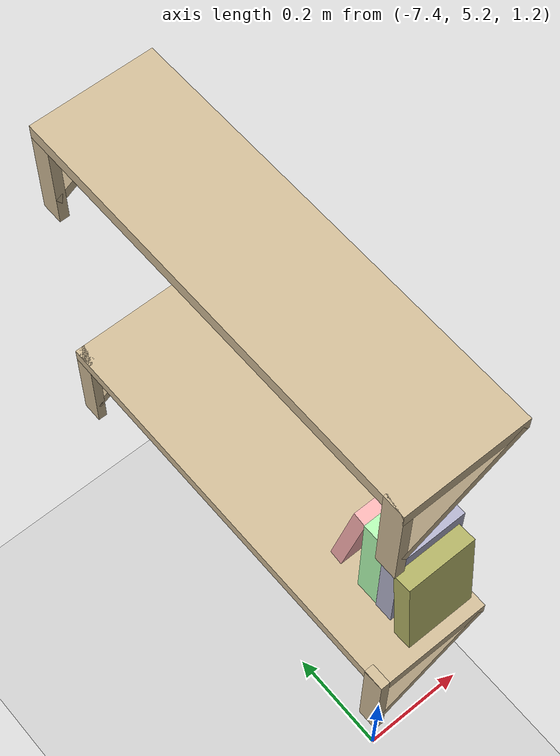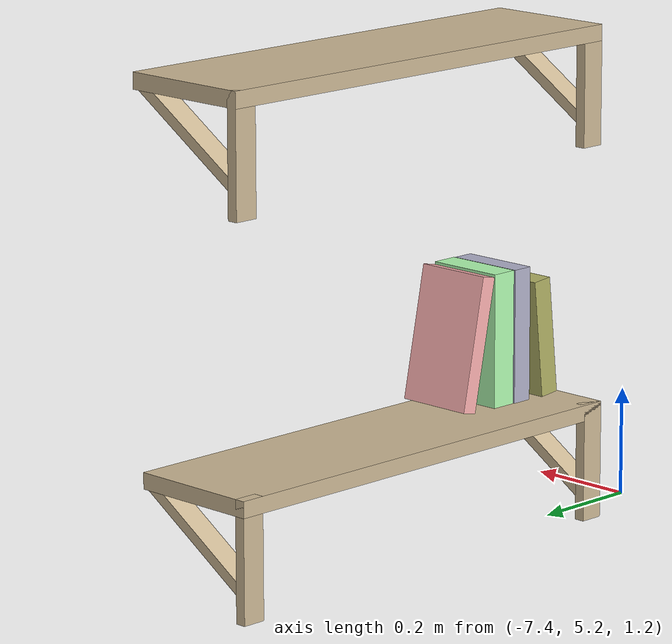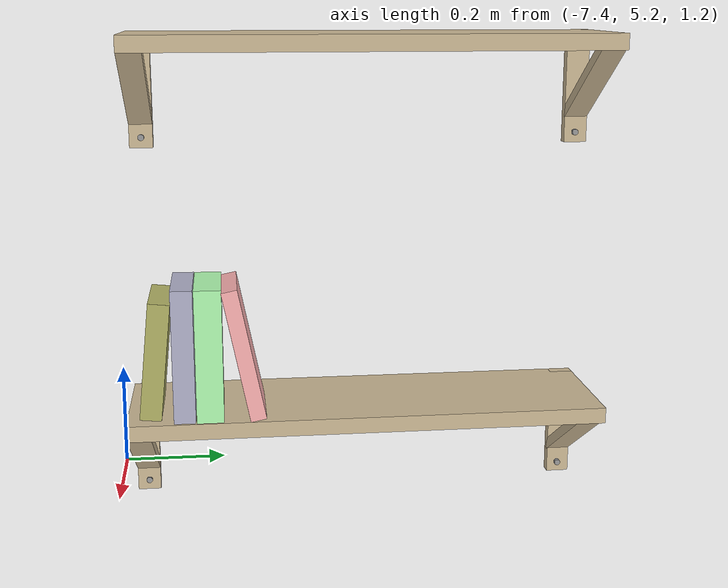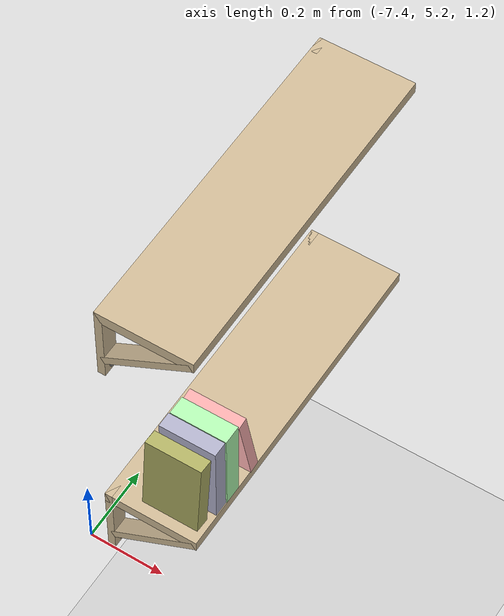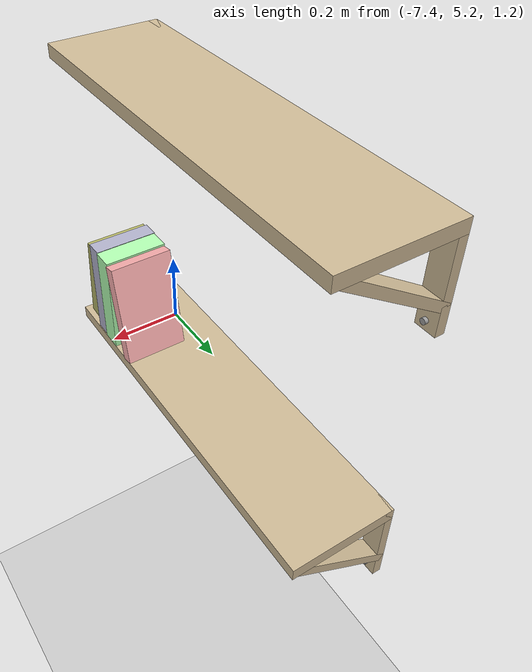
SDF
<sdf version="1.7">
 <world name="default">
  <model name="ground_plane">
   <static>1</static>
   <link name="link">
    <collision name="collision">
     <geometry><plane><normal>0 0 1</normal><size>100 100</size></plane></geometry>
     <surface>
      <contact><collide_bitmask>65535</collide_bitmask></contact>
      <friction><ode><mu>100</mu><mu2>50</mu2></ode></friction>
     </surface>
    </collision>
    <visual name="visual">
     <cast_shadows>0</cast_shadows>
     <geometry><plane><normal>0 0 1</normal><size>100 100</size></plane></geometry>
     <material>
      <script><uri>file://media/materials/scripts/gazebo.material</uri><name>Gazebo/Grey</name></script>
     </material>
    </visual>
   </link>
  </model>
  <model name="my_wall_shelf">
   <link name="link_0">
    <inertial>
     <mass>1</mass>
     <inertia>
      <ixx>0.166667</ixx>
      <ixy>0</ixy>
      <ixz>0</ixz>
      <iyy>0.166667</iyy>
      <iyz>0</iyz>
      <izz>0.166667</izz>
     </inertia>
    </inertial>
    <pose>0.314363 0.257975 0.059537 0 -0 0</pose>
    <visual name="visual">
     <pose>0 0 2 0 -0 0</pose>
     <geometry><box><size>0.25 0.9 0.03</size></box></geometry>
     <material>
      <lighting>1</lighting>
      <script><uri>file://media/materials/scripts/gazebo.material</uri><name>Gazebo/Grey</name></script>
      <shader type="pixel"><normal_map>__default__</normal_map></shader>
      <ambient>0.81 0.73 0.59 1</ambient>
      <diffuse>0.81 0.73 0.59 1</diffuse>
      <specular>0.01 0.01 0.01 1</specular>
      <emissive>0 0 0 1</emissive>
     </material>
    </visual>
    <collision name="collision">
     <pose>0 0 2 0 -0 0</pose>
     <geometry><box><size>0.25 0.9 0.03</size></box></geometry>
     <surface>
      <friction>
       <ode><mu>1</mu><mu2>1</mu2><fdir1>0 0 0</fdir1><slip1>0</slip1><slip2>0</slip2></ode>
       <torsional>
        <coefficient>1</coefficient>
        <patch_radius>0</patch_radius>
        <surface_radius>0</surface_radius>
        <use_patch_radius>1</use_patch_radius>
        <ode><slip>0</slip></ode>
       </torsional>
      </friction>
      <bounce><restitution_coefficient>0</restitution_coefficient><threshold>1e+06</threshold></bounce>
      <contact>
       <collide_without_contact>0</collide_without_contact>
       <collide_without_contact_bitmask>1</collide_without_contact_bitmask>
       <collide_bitmask>1</collide_bitmask>
       <ode>
        <soft_cfm>0</soft_cfm>
        <soft_erp>0.2</soft_erp>
        <kp>1e+13</kp>
        <kd>1</kd>
        <max_vel>0.01</max_vel>
        <min_depth>0</min_depth>
       </ode>
       <bullet>
        <split_impulse>1</split_impulse>
        <split_impulse_penetration_threshold>-0.01</split_impulse_penetration_threshold>
        <soft_cfm>0</soft_cfm>
        <soft_erp>0.2</soft_erp>
        <kp>1e+13</kp>
        <kd>1</kd>
       </bullet>
      </contact>
     </surface>
    </collision>
   </link>
   <link name="link_1">
    <inertial>
     <mass>1</mass>
     <inertia>
      <ixx>0.166667</ixx>
      <ixy>0</ixy>
      <ixz>0</ixz>
      <iyy>0.166667</iyy>
      <iyz>0</iyz>
      <izz>0.166667</izz>
     </inertia>
    </inertial>
    <pose>0.199363 -0.169525 -0.035463 0 -0 0</pose>
    <visual name="visual">
     <pose>0 0 2 0 -0 0</pose>
     <geometry><box><size>0.02 0.045 0.22</size></box></geometry>
     <material>
      <lighting>1</lighting>
      <script><uri>file://media/materials/scripts/gazebo.material</uri><name>Gazebo/Grey</name></script>
      <shader type="pixel"><normal_map>__default__</normal_map></shader>
      <ambient>0.81 0.73 0.59 1</ambient>
      <diffuse>0.81 0.73 0.59 1</diffuse>
      <specular>0.01 0.01 0.01 1</specular>
      <emissive>0 0 0 1</emissive>
     </material>
    </visual>
    <collision name="collision">
     <pose>0 0 2 0 -0 0</pose>
     <geometry><box><size>0.02 0.044 0.22</size></box></geometry>
     <surface>
      <friction>
       <ode><mu>1</mu><mu2>1</mu2><fdir1>0 0 0</fdir1><slip1>0</slip1><slip2>0</slip2></ode>
       <torsional>
        <coefficient>1</coefficient>
        <patch_radius>0</patch_radius>
        <surface_radius>0</surface_radius>
        <use_patch_radius>1</use_patch_radius>
        <ode><slip>0</slip></ode>
       </torsional>
      </friction>
      <bounce><restitution_coefficient>0</restitution_coefficient><threshold>1e+06</threshold></bounce>
      <contact>
       <collide_without_contact>0</collide_without_contact>
       <collide_without_contact_bitmask>1</collide_without_contact_bitmask>
       <collide_bitmask>1</collide_bitmask>
       <ode>
        <soft_cfm>0</soft_cfm>
        <soft_erp>0.2</soft_erp>
        <kp>1e+13</kp>
        <kd>1</kd>
        <max_vel>0.01</max_vel>
        <min_depth>0</min_depth>
       </ode>
       <bullet>
        <split_impulse>1</split_impulse>
        <split_impulse_penetration_threshold>-0.01</split_impulse_penetration_threshold>
        <soft_cfm>0</soft_cfm>
        <soft_erp>0.2</soft_erp>
        <kp>1e+13</kp>
        <kd>1</kd>
       </bullet>
      </contact>
     </surface>
    </collision>
   </link>
   <link name="link_1_clone">
    <inertial>
     <mass>1</mass>
     <inertia>
      <ixx>0.166667</ixx>
      <ixy>0</ixy>
      <ixz>0</ixz>
      <iyy>0.166667</iyy>
      <iyz>0</iyz>
      <izz>0.166667</izz>
     </inertia>
    </inertial>
    <pose>0.199364 0.685475 -0.035463 0 -0 0</pose>
    <visual name="visual">
     <pose>0 0 2 0 -0 0</pose>
     <geometry><box><size>0.02 0.045 0.22</size></box></geometry>
     <material>
      <lighting>1</lighting>
      <script><uri>file://media/materials/scripts/gazebo.material</uri><name>Gazebo/Grey</name></script>
      <shader type="pixel"><normal_map>__default__</normal_map></shader>
      <ambient>0.81 0.73 0.59 1</ambient>
      <diffuse>0.81 0.73 0.59 1</diffuse>
      <specular>0.01 0.01 0.01 1</specular>
      <emissive>0 0 0 1</emissive>
     </material>
    </visual>
    <collision name="collision">
     <pose>0 0 2 0 -0 0</pose>
     <geometry><box><size>0.02 0.044 0.22</size></box></geometry>
     <surface>
      <friction>
       <ode><mu>1</mu><mu2>1</mu2><fdir1>0 0 0</fdir1><slip1>0</slip1><slip2>0</slip2></ode>
       <torsional>
        <coefficient>1</coefficient>
        <patch_radius>0</patch_radius>
        <surface_radius>0</surface_radius>
        <use_patch_radius>1</use_patch_radius>
        <ode><slip>0</slip></ode>
       </torsional>
      </friction>
      <bounce><restitution_coefficient>0</restitution_coefficient><threshold>1e+06</threshold></bounce>
      <contact>
       <collide_without_contact>0</collide_without_contact>
       <collide_without_contact_bitmask>1</collide_without_contact_bitmask>
       <collide_bitmask>1</collide_bitmask>
       <ode>
        <soft_cfm>0</soft_cfm>
        <soft_erp>0.2</soft_erp>
        <kp>1e+13</kp>
        <kd>1</kd>
        <max_vel>0.01</max_vel>
        <min_depth>0</min_depth>
       </ode>
       <bullet>
        <split_impulse>1</split_impulse>
        <split_impulse_penetration_threshold>-0.01</split_impulse_penetration_threshold>
        <soft_cfm>0</soft_cfm>
        <soft_erp>0.2</soft_erp>
        <kp>1e+13</kp>
        <kd>1</kd>
       </bullet>
      </contact>
     </surface>
    </collision>
   </link>
   <link name="link_1_clone_0">
    <inertial>
     <mass>1</mass>
     <inertia>
      <ixx>0.166667</ixx>
      <ixy>0</ixy>
      <ixz>0</ixz>
      <iyy>0.166667</iyy>
      <iyz>0</iyz>
      <izz>0.166667</izz>
     </inertia>
    </inertial>
    <pose>0.317296 -0.16953 -0.018988 0 -0 0</pose>
    <visual name="visual">
     <pose>0 0 2 0 1 0</pose>
     <geometry><box><size>0.02 0.045 0.27</size></box></geometry>
     <material>
      <lighting>1</lighting>
      <script><uri>file://media/materials/scripts/gazebo.material</uri><name>Gazebo/Grey</name></script>
      <shader type="pixel"><normal_map>__default__</normal_map></shader>
      <ambient>0.8 0.73 0.59 1</ambient>
      <diffuse>0.81 0.73 0.59 1</diffuse>
      <specular>0.01 0.01 0.01 1</specular>
      <emissive>0 0 0 1</emissive>
     </material>
    </visual>
    <collision name="collision">
     <pose>0 0 2 0 1 0</pose>
     <geometry><box><size>0.02 0.044 0.27</size></box></geometry>
     <surface>
      <friction>
       <ode><mu>1</mu><mu2>1</mu2><fdir1>0 0 0</fdir1><slip1>0</slip1><slip2>0</slip2></ode>
       <torsional>
        <coefficient>1</coefficient>
        <patch_radius>0</patch_radius>
        <surface_radius>0</surface_radius>
        <use_patch_radius>1</use_patch_radius>
        <ode><slip>0</slip></ode>
       </torsional>
      </friction>
      <bounce><restitution_coefficient>0</restitution_coefficient><threshold>1e+06</threshold></bounce>
      <contact>
       <collide_without_contact>0</collide_without_contact>
       <collide_without_contact_bitmask>1</collide_without_contact_bitmask>
       <collide_bitmask>1</collide_bitmask>
       <ode>
        <soft_cfm>0</soft_cfm>
        <soft_erp>0.2</soft_erp>
        <kp>1e+13</kp>
        <kd>1</kd>
        <max_vel>0.01</max_vel>
        <min_depth>0</min_depth>
       </ode>
       <bullet>
        <split_impulse>1</split_impulse>
        <split_impulse_penetration_threshold>-0.01</split_impulse_penetration_threshold>
        <soft_cfm>0</soft_cfm>
        <soft_erp>0.2</soft_erp>
        <kp>1e+13</kp>
        <kd>1</kd>
       </bullet>
      </contact>
     </surface>
    </collision>
   </link>
   <link name="link_1_clone_0_clone">
    <inertial>
     <mass>1</mass>
     <inertia>
      <ixx>0.166667</ixx>
      <ixy>0</ixy>
      <ixz>0</ixz>
      <iyy>0.166667</iyy>
      <iyz>0</iyz>
      <izz>0.166667</izz>
     </inertia>
    </inertial>
    <pose>0.308365 0.685475 -0.018988 0 -0 0</pose>
    <visual name="visual">
     <pose>0 0 2 0 1 0</pose>
     <geometry><box><size>0.02 0.045 0.27</size></box></geometry>
     <material>
      <lighting>1</lighting>
      <script><uri>file://media/materials/scripts/gazebo.material</uri><name>Gazebo/Grey</name></script>
      <shader type="pixel"><normal_map>__default__</normal_map></shader>
      <ambient>0.81 0.73 0.59 1</ambient>
      <diffuse>0.81 0.73 0.59 1</diffuse>
      <specular>0.01 0.01 0.01 1</specular>
      <emissive>0 0 0 1</emissive>
     </material>
    </visual>
    <collision name="collision">
     <pose>0 0 2 0 1 0</pose>
     <geometry><box><size>0.02 0.044 0.27</size></box></geometry>
     <surface>
      <friction>
       <ode><mu>1</mu><mu2>1</mu2><fdir1>0 0 0</fdir1><slip1>0</slip1><slip2>0</slip2></ode>
       <torsional>
        <coefficient>1</coefficient>
        <patch_radius>0</patch_radius>
        <surface_radius>0</surface_radius>
        <use_patch_radius>1</use_patch_radius>
        <ode><slip>0</slip></ode>
       </torsional>
      </friction>
      <bounce><restitution_coefficient>0</restitution_coefficient><threshold>1e+06</threshold></bounce>
      <contact>
       <collide_without_contact>0</collide_without_contact>
       <collide_without_contact_bitmask>1</collide_without_contact_bitmask>
       <collide_bitmask>1</collide_bitmask>
       <ode>
        <soft_cfm>0</soft_cfm>
        <soft_erp>0.2</soft_erp>
        <kp>1e+13</kp>
        <kd>1</kd>
        <max_vel>0.01</max_vel>
        <min_depth>0</min_depth>
       </ode>
       <bullet>
        <split_impulse>1</split_impulse>
        <split_impulse_penetration_threshold>-0.01</split_impulse_penetration_threshold>
        <soft_cfm>0</soft_cfm>
        <soft_erp>0.2</soft_erp>
        <kp>1e+13</kp>
        <kd>1</kd>
       </bullet>
      </contact>
     </surface>
    </collision>
   </link>
   <link name="link_2">
    <inertial>
     <mass>1</mass>
     <inertia><ixx>0.145833</ixx><ixy>0</ixy><ixz>0</ixz><iyy>0.145833</iyy><iyz>0</iyz><izz>0.125</izz></inertia>
    </inertial>
    <pose>0.206647 0.683855 -0.125468 0 -0 0</pose>
    <visual name="visual">
     <pose>0 0 2 0 1.5707 0</pose>
     <geometry><cylinder><radius>0.006</radius><length>0.02</length></cylinder></geometry>
     <material>
      <lighting>1</lighting>
      <script><uri>file://media/materials/scripts/gazebo.material</uri><name>Gazebo/Grey</name></script>
      <shader type="pixel"><normal_map>__default__</normal_map></shader>
      <ambient>0.86 0.86 0.86 1</ambient>
      <diffuse>0.86 0.86 0.86 1</diffuse>
      <specular>0.01 0.01 0.01 1</specular>
      <emissive>0 0 0 1</emissive>
     </material>
    </visual>
    <collision name="collision">
     <pose>0 0 2 0 1.5707 0</pose>
     <geometry><cylinder><radius>0.006</radius><length>0.02</length></cylinder></geometry>
     <surface>
      <friction>
       <ode><mu>1</mu><mu2>1</mu2><fdir1>0 0 0</fdir1><slip1>0</slip1><slip2>0</slip2></ode>
       <torsional>
        <coefficient>1</coefficient>
        <patch_radius>0</patch_radius>
        <surface_radius>0</surface_radius>
        <use_patch_radius>1</use_patch_radius>
        <ode><slip>0</slip></ode>
       </torsional>
      </friction>
      <bounce><restitution_coefficient>0</restitution_coefficient><threshold>1e+06</threshold></bounce>
      <contact>
       <collide_without_contact>0</collide_without_contact>
       <collide_without_contact_bitmask>1</collide_without_contact_bitmask>
       <collide_bitmask>1</collide_bitmask>
       <ode>
        <soft_cfm>0</soft_cfm>
        <soft_erp>0.2</soft_erp>
        <kp>1e+13</kp>
        <kd>1</kd>
        <max_vel>0.01</max_vel>
        <min_depth>0</min_depth>
       </ode>
       <bullet>
        <split_impulse>1</split_impulse>
        <split_impulse_penetration_threshold>-0.01</split_impulse_penetration_threshold>
        <soft_cfm>0</soft_cfm>
        <soft_erp>0.2</soft_erp>
        <kp>1e+13</kp>
        <kd>1</kd>
       </bullet>
      </contact>
     </surface>
    </collision>
   </link>
   <link name="link_2_clone">
    <inertial>
     <mass>1</mass>
     <inertia><ixx>0.145833</ixx><ixy>0</ixy><ixz>0</ixz><iyy>0.145833</iyy><iyz>0</iyz><izz>0.125</izz></inertia>
    </inertial>
    <pose>0.203478 -0.169266 -0.125468 0 -0 0</pose>
    <visual name="visual">
     <pose>0 0 2 0 1.5707 0</pose>
     <geometry><cylinder><radius>0.006</radius><length>0.02</length></cylinder></geometry>
     <material>
      <lighting>1</lighting>
      <script><uri>file://media/materials/scripts/gazebo.material</uri><name>Gazebo/Grey</name></script>
      <shader type="pixel"><normal_map>__default__</normal_map></shader>
      <ambient>0.86 0.86 0.86 1</ambient>
      <diffuse>0.86 0.86 0.86 1</diffuse>
      <specular>0.01 0.01 0.01 1</specular>
      <emissive>0 0 0 1</emissive>
     </material>
    </visual>
    <collision name="collision">
     <pose>0 0 2 0 1.5707 0</pose>
     <geometry><cylinder><radius>0.006</radius><length>0.02</length></cylinder></geometry>
     <surface>
      <friction>
       <ode><mu>1</mu><mu2>1</mu2><fdir1>0 0 0</fdir1><slip1>0</slip1><slip2>0</slip2></ode>
       <torsional>
        <coefficient>1</coefficient>
        <patch_radius>0</patch_radius>
        <surface_radius>0</surface_radius>
        <use_patch_radius>1</use_patch_radius>
        <ode><slip>0</slip></ode>
       </torsional>
      </friction>
      <bounce><restitution_coefficient>0</restitution_coefficient><threshold>1e+06</threshold></bounce>
      <contact>
       <collide_without_contact>0</collide_without_contact>
       <collide_without_contact_bitmask>1</collide_without_contact_bitmask>
       <collide_bitmask>1</collide_bitmask>
       <ode>
        <soft_cfm>0</soft_cfm>
        <soft_erp>0.2</soft_erp>
        <kp>1e+13</kp>
        <kd>1</kd>
        <max_vel>0.01</max_vel>
        <min_depth>0</min_depth>
       </ode>
       <bullet>
        <split_impulse>1</split_impulse>
        <split_impulse_penetration_threshold>-0.01</split_impulse_penetration_threshold>
        <soft_cfm>0</soft_cfm>
        <soft_erp>0.2</soft_erp>
        <kp>1e+13</kp>
        <kd>1</kd>
       </bullet>
      </contact>
     </surface>
    </collision>
   </link>
   <static>1</static>
   <pose>-7.55914 5.42668 0 0 -0 0</pose>
  </model>
  <model name="my_wall_shelf_1">
   <link name="link_0">
    <inertial>
     <mass>1</mass>
     <inertia>
      <ixx>0.166667</ixx>
      <ixy>0</ixy>
      <ixz>0</ixz>
      <iyy>0.166667</iyy>
      <iyz>0</iyz>
      <izz>0.166667</izz>
     </inertia>
    </inertial>
    <pose>0.314363 0.257975 0.059537 0 -0 0</pose>
    <visual name="visual">
     <pose>0 0 2 0 -0 0</pose>
     <geometry><box><size>0.25 0.9 0.03</size></box></geometry>
     <material>
      <lighting>1</lighting>
      <script><uri>file://media/materials/scripts/gazebo.material</uri><name>Gazebo/Grey</name></script>
      <shader type="pixel"><normal_map>__default__</normal_map></shader>
      <ambient>0.81 0.73 0.59 1</ambient>
      <diffuse>0.81 0.73 0.59 1</diffuse>
      <specular>0.01 0.01 0.01 1</specular>
      <emissive>0 0 0 1</emissive>
     </material>
    </visual>
    <collision name="collision">
     <pose>0 0 2 0 -0 0</pose>
     <geometry><box><size>0.25 0.9 0.03</size></box></geometry>
     <surface>
      <friction>
       <ode><mu>1</mu><mu2>1</mu2><fdir1>0 0 0</fdir1><slip1>0</slip1><slip2>0</slip2></ode>
       <torsional>
        <coefficient>1</coefficient>
        <patch_radius>0</patch_radius>
        <surface_radius>0</surface_radius>
        <use_patch_radius>1</use_patch_radius>
        <ode><slip>0</slip></ode>
       </torsional>
      </friction>
      <bounce><restitution_coefficient>0</restitution_coefficient><threshold>1e+06</threshold></bounce>
      <contact>
       <collide_without_contact>0</collide_without_contact>
       <collide_without_contact_bitmask>1</collide_without_contact_bitmask>
       <collide_bitmask>1</collide_bitmask>
       <ode>
        <soft_cfm>0</soft_cfm>
        <soft_erp>0.2</soft_erp>
        <kp>1e+13</kp>
        <kd>1</kd>
        <max_vel>0.01</max_vel>
        <min_depth>0</min_depth>
       </ode>
       <bullet>
        <split_impulse>1</split_impulse>
        <split_impulse_penetration_threshold>-0.01</split_impulse_penetration_threshold>
        <soft_cfm>0</soft_cfm>
        <soft_erp>0.2</soft_erp>
        <kp>1e+13</kp>
        <kd>1</kd>
       </bullet>
      </contact>
     </surface>
    </collision>
   </link>
   <link name="link_1">
    <inertial>
     <mass>1</mass>
     <inertia>
      <ixx>0.166667</ixx>
      <ixy>0</ixy>
      <ixz>0</ixz>
      <iyy>0.166667</iyy>
      <iyz>0</iyz>
      <izz>0.166667</izz>
     </inertia>
    </inertial>
    <pose>0.199363 -0.169525 -0.035463 0 -0 0</pose>
    <visual name="visual">
     <pose>0 0 2 0 -0 0</pose>
     <geometry><box><size>0.02 0.045 0.22</size></box></geometry>
     <material>
      <lighting>1</lighting>
      <script><uri>file://media/materials/scripts/gazebo.material</uri><name>Gazebo/Grey</name></script>
      <shader type="pixel"><normal_map>__default__</normal_map></shader>
      <ambient>0.81 0.73 0.59 1</ambient>
      <diffuse>0.81 0.73 0.59 1</diffuse>
      <specular>0.01 0.01 0.01 1</specular>
      <emissive>0 0 0 1</emissive>
     </material>
    </visual>
    <collision name="collision">
     <pose>0 0 2 0 -0 0</pose>
     <geometry><box><size>0.02 0.044 0.22</size></box></geometry>
     <surface>
      <friction>
       <ode><mu>1</mu><mu2>1</mu2><fdir1>0 0 0</fdir1><slip1>0</slip1><slip2>0</slip2></ode>
       <torsional>
        <coefficient>1</coefficient>
        <patch_radius>0</patch_radius>
        <surface_radius>0</surface_radius>
        <use_patch_radius>1</use_patch_radius>
        <ode><slip>0</slip></ode>
       </torsional>
      </friction>
      <bounce><restitution_coefficient>0</restitution_coefficient><threshold>1e+06</threshold></bounce>
      <contact>
       <collide_without_contact>0</collide_without_contact>
       <collide_without_contact_bitmask>1</collide_without_contact_bitmask>
       <collide_bitmask>1</collide_bitmask>
       <ode>
        <soft_cfm>0</soft_cfm>
        <soft_erp>0.2</soft_erp>
        <kp>1e+13</kp>
        <kd>1</kd>
        <max_vel>0.01</max_vel>
        <min_depth>0</min_depth>
       </ode>
       <bullet>
        <split_impulse>1</split_impulse>
        <split_impulse_penetration_threshold>-0.01</split_impulse_penetration_threshold>
        <soft_cfm>0</soft_cfm>
        <soft_erp>0.2</soft_erp>
        <kp>1e+13</kp>
        <kd>1</kd>
       </bullet>
      </contact>
     </surface>
    </collision>
   </link>
   <link name="link_1_clone">
    <inertial>
     <mass>1</mass>
     <inertia>
      <ixx>0.166667</ixx>
      <ixy>0</ixy>
      <ixz>0</ixz>
      <iyy>0.166667</iyy>
      <iyz>0</iyz>
      <izz>0.166667</izz>
     </inertia>
    </inertial>
    <pose>0.199364 0.685475 -0.035463 0 -0 0</pose>
    <visual name="visual">
     <pose>0 0 2 0 -0 0</pose>
     <geometry><box><size>0.02 0.045 0.22</size></box></geometry>
     <material>
      <lighting>1</lighting>
      <script><uri>file://media/materials/scripts/gazebo.material</uri><name>Gazebo/Grey</name></script>
      <shader type="pixel"><normal_map>__default__</normal_map></shader>
      <ambient>0.81 0.73 0.59 1</ambient>
      <diffuse>0.81 0.73 0.59 1</diffuse>
      <specular>0.01 0.01 0.01 1</specular>
      <emissive>0 0 0 1</emissive>
     </material>
    </visual>
    <collision name="collision">
     <pose>0 0 2 0 -0 0</pose>
     <geometry><box><size>0.02 0.044 0.22</size></box></geometry>
     <surface>
      <friction>
       <ode><mu>1</mu><mu2>1</mu2><fdir1>0 0 0</fdir1><slip1>0</slip1><slip2>0</slip2></ode>
       <torsional>
        <coefficient>1</coefficient>
        <patch_radius>0</patch_radius>
        <surface_radius>0</surface_radius>
        <use_patch_radius>1</use_patch_radius>
        <ode><slip>0</slip></ode>
       </torsional>
      </friction>
      <bounce><restitution_coefficient>0</restitution_coefficient><threshold>1e+06</threshold></bounce>
      <contact>
       <collide_without_contact>0</collide_without_contact>
       <collide_without_contact_bitmask>1</collide_without_contact_bitmask>
       <collide_bitmask>1</collide_bitmask>
       <ode>
        <soft_cfm>0</soft_cfm>
        <soft_erp>0.2</soft_erp>
        <kp>1e+13</kp>
        <kd>1</kd>
        <max_vel>0.01</max_vel>
        <min_depth>0</min_depth>
       </ode>
       <bullet>
        <split_impulse>1</split_impulse>
        <split_impulse_penetration_threshold>-0.01</split_impulse_penetration_threshold>
        <soft_cfm>0</soft_cfm>
        <soft_erp>0.2</soft_erp>
        <kp>1e+13</kp>
        <kd>1</kd>
       </bullet>
      </contact>
     </surface>
    </collision>
   </link>
   <link name="link_1_clone_0">
    <inertial>
     <mass>1</mass>
     <inertia>
      <ixx>0.166667</ixx>
      <ixy>0</ixy>
      <ixz>0</ixz>
      <iyy>0.166667</iyy>
      <iyz>0</iyz>
      <izz>0.166667</izz>
     </inertia>
    </inertial>
    <pose>0.317296 -0.16953 -0.018988 0 -0 0</pose>
    <visual name="visual">
     <pose>0 0 2 0 1 0</pose>
     <geometry><box><size>0.02 0.045 0.27</size></box></geometry>
     <material>
      <lighting>1</lighting>
      <script><uri>file://media/materials/scripts/gazebo.material</uri><name>Gazebo/Grey</name></script>
      <shader type="pixel"><normal_map>__default__</normal_map></shader>
      <ambient>0.8 0.73 0.59 1</ambient>
      <diffuse>0.81 0.73 0.59 1</diffuse>
      <specular>0.01 0.01 0.01 1</specular>
      <emissive>0 0 0 1</emissive>
     </material>
    </visual>
    <collision name="collision">
     <pose>0 0 2 0 1 0</pose>
     <geometry><box><size>0.02 0.044 0.27</size></box></geometry>
     <surface>
      <friction>
       <ode><mu>1</mu><mu2>1</mu2><fdir1>0 0 0</fdir1><slip1>0</slip1><slip2>0</slip2></ode>
       <torsional>
        <coefficient>1</coefficient>
        <patch_radius>0</patch_radius>
        <surface_radius>0</surface_radius>
        <use_patch_radius>1</use_patch_radius>
        <ode><slip>0</slip></ode>
       </torsional>
      </friction>
      <bounce><restitution_coefficient>0</restitution_coefficient><threshold>1e+06</threshold></bounce>
      <contact>
       <collide_without_contact>0</collide_without_contact>
       <collide_without_contact_bitmask>1</collide_without_contact_bitmask>
       <collide_bitmask>1</collide_bitmask>
       <ode>
        <soft_cfm>0</soft_cfm>
        <soft_erp>0.2</soft_erp>
        <kp>1e+13</kp>
        <kd>1</kd>
        <max_vel>0.01</max_vel>
        <min_depth>0</min_depth>
       </ode>
       <bullet>
        <split_impulse>1</split_impulse>
        <split_impulse_penetration_threshold>-0.01</split_impulse_penetration_threshold>
        <soft_cfm>0</soft_cfm>
        <soft_erp>0.2</soft_erp>
        <kp>1e+13</kp>
        <kd>1</kd>
       </bullet>
      </contact>
     </surface>
    </collision>
   </link>
   <link name="link_1_clone_0_clone">
    <inertial>
     <mass>1</mass>
     <inertia>
      <ixx>0.166667</ixx>
      <ixy>0</ixy>
      <ixz>0</ixz>
      <iyy>0.166667</iyy>
      <iyz>0</iyz>
      <izz>0.166667</izz>
     </inertia>
    </inertial>
    <pose>0.308365 0.685475 -0.018988 0 -0 0</pose>
    <visual name="visual">
     <pose>0 0 2 0 1 0</pose>
     <geometry><box><size>0.02 0.045 0.27</size></box></geometry>
     <material>
      <lighting>1</lighting>
      <script><uri>file://media/materials/scripts/gazebo.material</uri><name>Gazebo/Grey</name></script>
      <shader type="pixel"><normal_map>__default__</normal_map></shader>
      <ambient>0.81 0.73 0.59 1</ambient>
      <diffuse>0.81 0.73 0.59 1</diffuse>
      <specular>0.01 0.01 0.01 1</specular>
      <emissive>0 0 0 1</emissive>
     </material>
    </visual>
    <collision name="collision">
     <pose>0 0 2 0 1 0</pose>
     <geometry><box><size>0.02 0.044 0.27</size></box></geometry>
     <surface>
      <friction>
       <ode><mu>1</mu><mu2>1</mu2><fdir1>0 0 0</fdir1><slip1>0</slip1><slip2>0</slip2></ode>
       <torsional>
        <coefficient>1</coefficient>
        <patch_radius>0</patch_radius>
        <surface_radius>0</surface_radius>
        <use_patch_radius>1</use_patch_radius>
        <ode><slip>0</slip></ode>
       </torsional>
      </friction>
      <bounce><restitution_coefficient>0</restitution_coefficient><threshold>1e+06</threshold></bounce>
      <contact>
       <collide_without_contact>0</collide_without_contact>
       <collide_without_contact_bitmask>1</collide_without_contact_bitmask>
       <collide_bitmask>1</collide_bitmask>
       <ode>
        <soft_cfm>0</soft_cfm>
        <soft_erp>0.2</soft_erp>
        <kp>1e+13</kp>
        <kd>1</kd>
        <max_vel>0.01</max_vel>
        <min_depth>0</min_depth>
       </ode>
       <bullet>
        <split_impulse>1</split_impulse>
        <split_impulse_penetration_threshold>-0.01</split_impulse_penetration_threshold>
        <soft_cfm>0</soft_cfm>
        <soft_erp>0.2</soft_erp>
        <kp>1e+13</kp>
        <kd>1</kd>
       </bullet>
      </contact>
     </surface>
    </collision>
   </link>
   <link name="link_2">
    <inertial>
     <mass>1</mass>
     <inertia><ixx>0.145833</ixx><ixy>0</ixy><ixz>0</ixz><iyy>0.145833</iyy><iyz>0</iyz><izz>0.125</izz></inertia>
    </inertial>
    <pose>0.206647 0.683855 -0.125468 0 -0 0</pose>
    <visual name="visual">
     <pose>0 0 2 0 1.5707 0</pose>
     <geometry><cylinder><radius>0.006</radius><length>0.02</length></cylinder></geometry>
     <material>
      <lighting>1</lighting>
      <script><uri>file://media/materials/scripts/gazebo.material</uri><name>Gazebo/Grey</name></script>
      <shader type="pixel"><normal_map>__default__</normal_map></shader>
      <ambient>0.86 0.86 0.86 1</ambient>
      <diffuse>0.86 0.86 0.86 1</diffuse>
      <specular>0.01 0.01 0.01 1</specular>
      <emissive>0 0 0 1</emissive>
     </material>
    </visual>
    <collision name="collision">
     <pose>0 0 2 0 1.5707 0</pose>
     <geometry><cylinder><radius>0.006</radius><length>0.02</length></cylinder></geometry>
     <surface>
      <friction>
       <ode><mu>1</mu><mu2>1</mu2><fdir1>0 0 0</fdir1><slip1>0</slip1><slip2>0</slip2></ode>
       <torsional>
        <coefficient>1</coefficient>
        <patch_radius>0</patch_radius>
        <surface_radius>0</surface_radius>
        <use_patch_radius>1</use_patch_radius>
        <ode><slip>0</slip></ode>
       </torsional>
      </friction>
      <bounce><restitution_coefficient>0</restitution_coefficient><threshold>1e+06</threshold></bounce>
      <contact>
       <collide_without_contact>0</collide_without_contact>
       <collide_without_contact_bitmask>1</collide_without_contact_bitmask>
       <collide_bitmask>1</collide_bitmask>
       <ode>
        <soft_cfm>0</soft_cfm>
        <soft_erp>0.2</soft_erp>
        <kp>1e+13</kp>
        <kd>1</kd>
        <max_vel>0.01</max_vel>
        <min_depth>0</min_depth>
       </ode>
       <bullet>
        <split_impulse>1</split_impulse>
        <split_impulse_penetration_threshold>-0.01</split_impulse_penetration_threshold>
        <soft_cfm>0</soft_cfm>
        <soft_erp>0.2</soft_erp>
        <kp>1e+13</kp>
        <kd>1</kd>
       </bullet>
      </contact>
     </surface>
    </collision>
   </link>
   <link name="link_2_clone">
    <inertial>
     <mass>1</mass>
     <inertia><ixx>0.145833</ixx><ixy>0</ixy><ixz>0</ixz><iyy>0.145833</iyy><iyz>0</iyz><izz>0.125</izz></inertia>
    </inertial>
    <pose>0.203478 -0.169266 -0.125468 0 -0 0</pose>
    <visual name="visual">
     <pose>0 0 2 0 1.5707 0</pose>
     <geometry><cylinder><radius>0.006</radius><length>0.02</length></cylinder></geometry>
     <material>
      <lighting>1</lighting>
      <script><uri>file://media/materials/scripts/gazebo.material</uri><name>Gazebo/Grey</name></script>
      <shader type="pixel"><normal_map>__default__</normal_map></shader>
      <ambient>0.86 0.86 0.86 1</ambient>
      <diffuse>0.86 0.86 0.86 1</diffuse>
      <specular>0.01 0.01 0.01 1</specular>
      <emissive>0 0 0 1</emissive>
     </material>
    </visual>
    <collision name="collision">
     <pose>0 0 2 0 1.5707 0</pose>
     <geometry><cylinder><radius>0.006</radius><length>0.02</length></cylinder></geometry>
     <surface>
      <friction>
       <ode><mu>1</mu><mu2>1</mu2><fdir1>0 0 0</fdir1><slip1>0</slip1><slip2>0</slip2></ode>
       <torsional>
        <coefficient>1</coefficient>
        <patch_radius>0</patch_radius>
        <surface_radius>0</surface_radius>
        <use_patch_radius>1</use_patch_radius>
        <ode><slip>0</slip></ode>
       </torsional>
      </friction>
      <bounce><restitution_coefficient>0</restitution_coefficient><threshold>1e+06</threshold></bounce>
      <contact>
       <collide_without_contact>0</collide_without_contact>
       <collide_without_contact_bitmask>1</collide_without_contact_bitmask>
       <collide_bitmask>1</collide_bitmask>
       <ode>
        <soft_cfm>0</soft_cfm>
        <soft_erp>0.2</soft_erp>
        <kp>1e+13</kp>
        <kd>1</kd>
        <max_vel>0.01</max_vel>
        <min_depth>0</min_depth>
       </ode>
       <bullet>
        <split_impulse>1</split_impulse>
        <split_impulse_penetration_threshold>-0.01</split_impulse_penetration_threshold>
        <soft_cfm>0</soft_cfm>
        <soft_erp>0.2</soft_erp>
        <kp>1e+13</kp>
        <kd>1</kd>
       </bullet>
      </contact>
     </surface>
    </collision>
   </link>
   <static>1</static>
   <pose>-7.55914 5.41652 -0.7 0 -0 0</pose>
  </model>
  <model name="my_books">
   <link name="link">
    <inertial>
     <mass>1</mass>
     <inertia>
      <ixx>0.166667</ixx>
      <ixy>0</ixy>
      <ixz>0</ixz>
      <iyy>0.166667</iyy>
      <iyz>0</iyz>
      <izz>0.166667</izz>
     </inertia>
     <pose>0 0 1.15 0 -0 0</pose>
    </inertial>
    <pose>0.17974 0 -0.00246 0 -0 0</pose>
    <visual name="visual">
     <geometry><box><size>0.03 0.15 0.25</size></box></geometry>
     <material>
      <script><name>Gazebo/Grey</name><uri>file://media/materials/scripts/gazebo.material</uri></script>
      <shader type="pixel"><normal_map>__default__</normal_map></shader>
      <ambient>0.6 0.45 0.3 1</ambient>
      <diffuse>1 0.7 0.7 1</diffuse>
      <specular>0.01 0.01 0.01 1</specular>
      <emissive>0 0 0 1</emissive>
     </material>
     <pose>0 0 1.15 0 0.2 0</pose>
    </visual>
    <collision name="collision">
     <pose>0 0 1.15 0 0.2 0</pose>
     <geometry><box><size>0.03 0.15 0.25</size></box></geometry>
     <surface>
      <friction>
       <ode><mu>1</mu><mu2>1</mu2><fdir1>0 0 0</fdir1><slip1>0</slip1><slip2>0</slip2></ode>
       <torsional>
        <coefficient>1</coefficient>
        <patch_radius>0</patch_radius>
        <surface_radius>0</surface_radius>
        <use_patch_radius>1</use_patch_radius>
        <ode><slip>0</slip></ode>
       </torsional>
      </friction>
      <bounce><restitution_coefficient>0</restitution_coefficient><threshold>1e+06</threshold></bounce>
      <contact>
       <collide_without_contact>0</collide_without_contact>
       <collide_without_contact_bitmask>1</collide_without_contact_bitmask>
       <collide_bitmask>1</collide_bitmask>
       <ode>
        <soft_cfm>0</soft_cfm>
        <soft_erp>0.2</soft_erp>
        <kp>1e+13</kp>
        <kd>1</kd>
        <max_vel>0.01</max_vel>
        <min_depth>0</min_depth>
       </ode>
       <bullet>
        <split_impulse>1</split_impulse>
        <split_impulse_penetration_threshold>-0.01</split_impulse_penetration_threshold>
        <soft_cfm>0</soft_cfm>
        <soft_erp>0.2</soft_erp>
        <kp>1e+13</kp>
        <kd>1</kd>
       </bullet>
      </contact>
     </surface>
    </collision>
   </link>
   <link name="link_clone">
    <inertial>
     <mass>1</mass>
     <inertia>
      <ixx>0.166667</ixx>
      <ixy>0</ixy>
      <ixz>0</ixz>
      <iyy>0.166667</iyy>
      <iyz>0</iyz>
      <izz>0.166667</izz>
     </inertia>
     <pose>0 0 1.15 0 -0 0</pose>
    </inertial>
    <pose>0.243198 -0.002133 -0.00246 1e-05 -0 0</pose>
    <visual name="visual">
     <geometry><box><size>0.05 0.15 0.25</size></box></geometry>
     <material>
      <script><name>Gazebo/Grey</name><uri>file://media/materials/scripts/gazebo.material</uri></script>
      <shader type="pixel"><normal_map>__default__</normal_map></shader>
      <ambient>0.3 0.5 0.3 1</ambient>
      <diffuse>0.7 1 0.7 1</diffuse>
      <specular>0.01 0.01 0.01 1</specular>
      <emissive>0 0 0 1</emissive>
     </material>
     <pose>0 0 1.15 0 -0 0</pose>
    </visual>
    <collision name="collision">
     <pose>0 0 1.15 0 -0 0</pose>
     <geometry><box><size>0.05 0.15 0.25</size></box></geometry>
     <surface>
      <friction>
       <ode><mu>1</mu><mu2>1</mu2><fdir1>0 0 0</fdir1><slip1>0</slip1><slip2>0</slip2></ode>
       <torsional>
        <coefficient>1</coefficient>
        <patch_radius>0</patch_radius>
        <surface_radius>0</surface_radius>
        <use_patch_radius>1</use_patch_radius>
        <ode><slip>0</slip></ode>
       </torsional>
      </friction>
      <bounce><restitution_coefficient>0</restitution_coefficient><threshold>1e+06</threshold></bounce>
      <contact>
       <collide_without_contact>0</collide_without_contact>
       <collide_without_contact_bitmask>1</collide_without_contact_bitmask>
       <collide_bitmask>1</collide_bitmask>
       <ode>
        <soft_cfm>0</soft_cfm>
        <soft_erp>0.2</soft_erp>
        <kp>1e+13</kp>
        <kd>1</kd>
        <max_vel>0.01</max_vel>
        <min_depth>0</min_depth>
       </ode>
       <bullet>
        <split_impulse>1</split_impulse>
        <split_impulse_penetration_threshold>-0.01</split_impulse_penetration_threshold>
        <soft_cfm>0</soft_cfm>
        <soft_erp>0.2</soft_erp>
        <kp>1e+13</kp>
        <kd>1</kd>
       </bullet>
      </contact>
     </surface>
    </collision>
   </link>
   <link name="link_clone_clone">
    <inertial>
     <mass>1</mass>
     <inertia>
      <ixx>0.166667</ixx>
      <ixy>0</ixy>
      <ixz>0</ixz>
      <iyy>0.166667</iyy>
      <iyz>0</iyz>
      <izz>0.166667</izz>
     </inertia>
     <pose>0 0 1.15 0 -0 0</pose>
    </inertial>
    <pose>0.289882 -0.003921 -0.00246 2e-05 -0 0</pose>
    <visual name="visual">
     <geometry><box><size>0.04 0.15 0.25</size></box></geometry>
     <material>
      <script><name>Gazebo/Grey</name><uri>file://media/materials/scripts/gazebo.material</uri></script>
      <shader type="pixel"><normal_map>__default__</normal_map></shader>
      <ambient>0.3 0.3 0.8 1</ambient>
      <diffuse>0.7 0.7 0.8 1</diffuse>
      <specular>0.01 0.01 0.01 1</specular>
      <emissive>0 0 0 1</emissive>
     </material>
     <pose>0 0 1.15 0 -0 0</pose>
    </visual>
    <collision name="collision">
     <pose>0 0 1.15 0 -0 0</pose>
     <geometry><box><size>0.04 0.15 0.25</size></box></geometry>
     <surface>
      <friction>
       <ode><mu>1</mu><mu2>1</mu2><fdir1>0 0 0</fdir1><slip1>0</slip1><slip2>0</slip2></ode>
       <torsional>
        <coefficient>1</coefficient>
        <patch_radius>0</patch_radius>
        <surface_radius>0</surface_radius>
        <use_patch_radius>1</use_patch_radius>
        <ode><slip>0</slip></ode>
       </torsional>
      </friction>
      <bounce><restitution_coefficient>0</restitution_coefficient><threshold>1e+06</threshold></bounce>
      <contact>
       <collide_without_contact>0</collide_without_contact>
       <collide_without_contact_bitmask>1</collide_without_contact_bitmask>
       <collide_bitmask>1</collide_bitmask>
       <ode>
        <soft_cfm>0</soft_cfm>
        <soft_erp>0.2</soft_erp>
        <kp>1e+13</kp>
        <kd>1</kd>
        <max_vel>0.01</max_vel>
        <min_depth>0</min_depth>
       </ode>
       <bullet>
        <split_impulse>1</split_impulse>
        <split_impulse_penetration_threshold>-0.01</split_impulse_penetration_threshold>
        <soft_cfm>0</soft_cfm>
        <soft_erp>0.2</soft_erp>
        <kp>1e+13</kp>
        <kd>1</kd>
       </bullet>
      </contact>
     </surface>
    </collision>
   </link>
   <link name="link_clone_clone_clone">
    <inertial>
     <mass>1</mass>
     <inertia>
      <ixx>0.166667</ixx>
      <ixy>0</ixy>
      <ixz>0</ixz>
      <iyy>0.166667</iyy>
      <iyz>0</iyz>
      <izz>0.166667</izz>
     </inertia>
     <pose>0 0 1.15 0 -0 0</pose>
    </inertial>
    <pose>0.341401 -0.014976 -0.013259 3e-05 -0 0</pose>
    <visual name="visual">
     <geometry><box><size>0.04 0.15 0.22</size></box></geometry>
     <material>
      <script><name>Gazebo/Grey</name><uri>file://media/materials/scripts/gazebo.material</uri></script>
      <shader type="pixel"><normal_map>__default__</normal_map></shader>
      <ambient>0.8 0.5 0.1 1</ambient>
      <diffuse>0.7 0.7 0.4 1</diffuse>
      <specular>0.01 0.01 0.01 1</specular>
      <emissive>0 0 0 1</emissive>
     </material>
     <pose>0 0 1.15 0 -0.1 0</pose>
    </visual>
    <collision name="collision">
     <pose>0 0 1.15 0 -0.1 0</pose>
     <geometry><box><size>0.04 0.15 0.22</size></box></geometry>
     <surface>
      <friction>
       <ode><mu>1</mu><mu2>1</mu2><fdir1>0 0 0</fdir1><slip1>0</slip1><slip2>0</slip2></ode>
       <torsional>
        <coefficient>1</coefficient>
        <patch_radius>0</patch_radius>
        <surface_radius>0</surface_radius>
        <use_patch_radius>1</use_patch_radius>
        <ode><slip>0</slip></ode>
       </torsional>
      </friction>
      <bounce><restitution_coefficient>0</restitution_coefficient><threshold>1e+06</threshold></bounce>
      <contact>
       <collide_without_contact>0</collide_without_contact>
       <collide_without_contact_bitmask>1</collide_without_contact_bitmask>
       <collide_bitmask>1</collide_bitmask>
       <ode>
        <soft_cfm>0</soft_cfm>
        <soft_erp>0.2</soft_erp>
        <kp>1e+13</kp>
        <kd>1</kd>
        <max_vel>0.01</max_vel>
        <min_depth>0</min_depth>
       </ode>
       <bullet>
        <split_impulse>1</split_impulse>
        <split_impulse_penetration_threshold>-0.01</split_impulse_penetration_threshold>
        <soft_cfm>0</soft_cfm>
        <soft_erp>0.2</soft_erp>
        <kp>1e+13</kp>
        <kd>1</kd>
       </bullet>
      </contact>
     </surface>
    </collision>
   </link>
   <static>1</static>
   <pose>-7.19241 5.62151 0.353149 0 0 -1.5708</pose>
  </model>
 </world>
</sdf>
